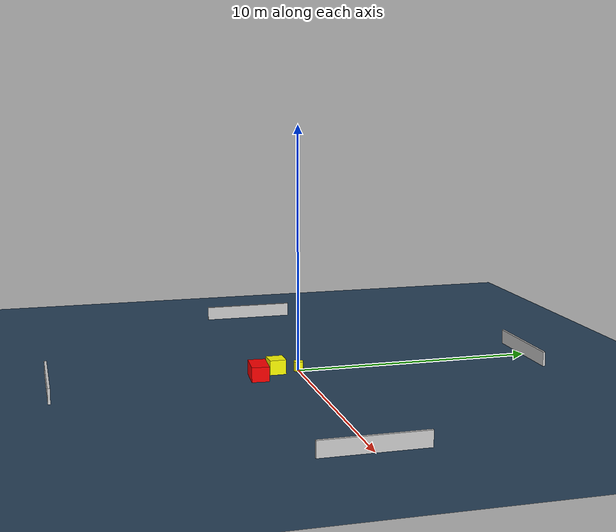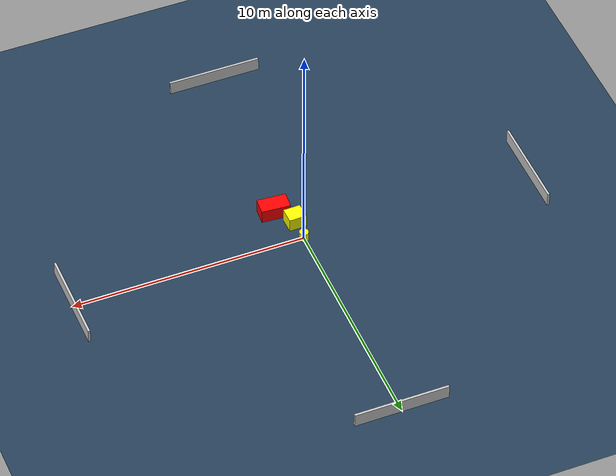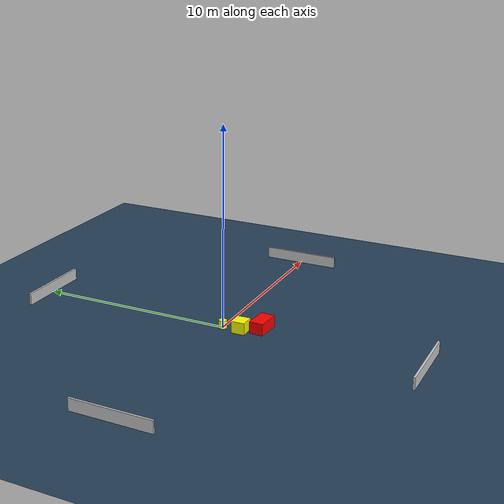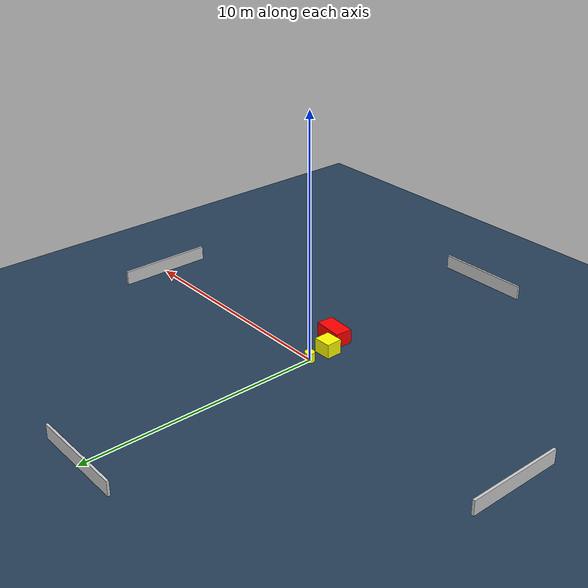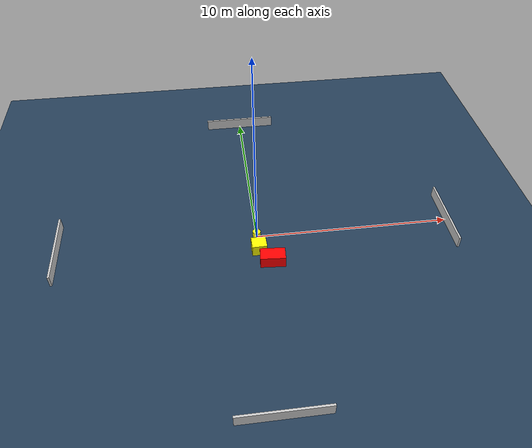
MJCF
<?xml version="1.0" ?>
<mujoco model="generated_environment">
  <option timestep="0.01" integrator="RK4" cone="elliptic"/>
  <default>
    <geom density="1"/>
  </default>
  <asset>
    <texture builtin="gradient" height="3072" name="skybox" rgb1="0.3 0.5 0.7" rgb2="0 0 0" type="skybox" width="512"/>
    <texture builtin="checker" height="300" name="groundplane" rgb1="0.2 0.3 0.4" rgb2="0.1 0.2 0.3" type="2d" width="300"/>
    <material name="groundplane" reflectance="0.2" texrepeat="5 5" texture="groundplane"/>
  </asset>
  <worldbody>
    <light dir="0 0 -1" directional="true" pos="0 0 1.5"/>
    <geom condim="3" friction="0.5 0.005 0.001" material="groundplane" name="floor" pos="0 0 0" size="0 0 0.05" type="plane"/>
    <body name="walls">
      <geom name="wall_1" condim="4" pos="-10.0 0.0 0.3" rgba="0.800000011920929 0.800000011920929 0.800000011920929 1.0" size="0.05 2.0 0.3" type="box"/>
      <geom name="wall_2" condim="4" pos="10.0 0.0 0.3" rgba="0.800000011920929 0.800000011920929 0.800000011920929 1.0" size="0.05 2.0 0.3" type="box"/>
      <geom name="wall_3" condim="4" pos="0.0 -10.0 0.3" rgba="0.800000011920929 0.800000011920929 0.800000011920929 1.0" size="2.0 0.05 0.3" type="box"/>
      <geom name="wall_4" condim="4" pos="0.0 10.0 0.3" rgba="0.800000011920929 0.800000011920929 0.800000011920929 1.0" size="2.0 0.05 0.3" type="box"/>
    </body>
    <body name="robot">
      <joint name="joint_x" type="slide" pos="0 0 0" axis="1 0 0"/>
      <joint name="joint_y" type="slide" pos="0 0 0" axis="0 1 0"/>
      <geom name="robot" type="cylinder" pos="0.0 0.0 0.2" size="0.2 0.2 0.0" mass="5.0" friction="1.0 0.005 0.0001" condim="4" rgba="1.0 1.0 0.0 1.0"/>
    </body>
    <body name="obstacle_1_movable">
      <geom name="obstacle_1_movable" condim="4" pos="0.0157636284623668 -0.9470148403277093 0.3" euler="0 0 1.080802312579654" friction="0.0 0.005 0.001" rgba="1.0 1.0 0.0 1.0" size="0.3703488076353615 0.3379823277314785 0.3" type="box" mass="0.1"/>
      <joint type="free"/>
    </body>
    <body name="obstacle_2_static">
      <geom name="obstacle_2_static" condim="4" pos="0.5987266422994424 -1.7974719577292713 0.3" euler="0 0 265.7859530216783" friction="0.0 0.005 0.001" rgba="1.0 0.0 0.0 1.0" size="0.35566876104951284 0.6204521740987681 0.3" type="box"/>
    </body>
  </worldbody>
  <actuator>
    <motor name="actuator_x" joint="joint_x" gear="1" ctrlrange="-1 1"/>
    <motor name="actuator_y" joint="joint_y" gear="1" ctrlrange="-1 1"/>
  </actuator>
</mujoco>
